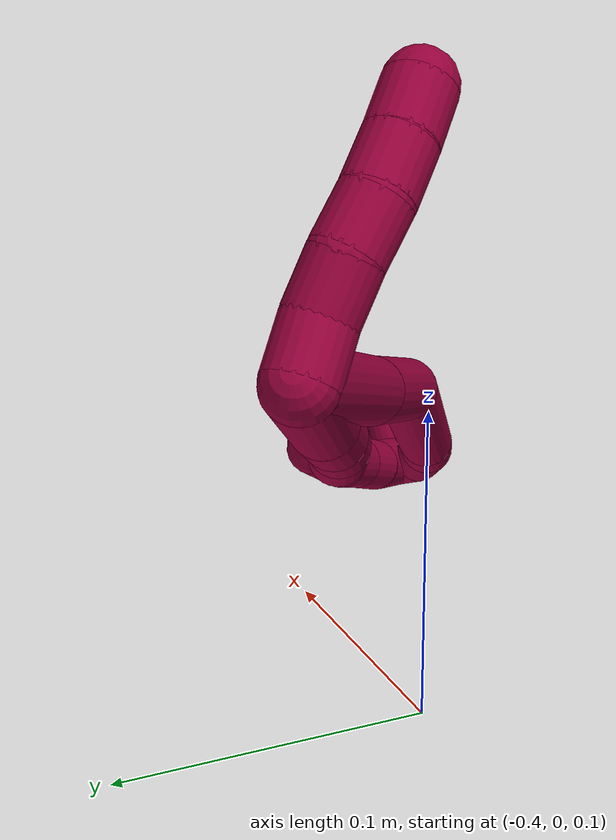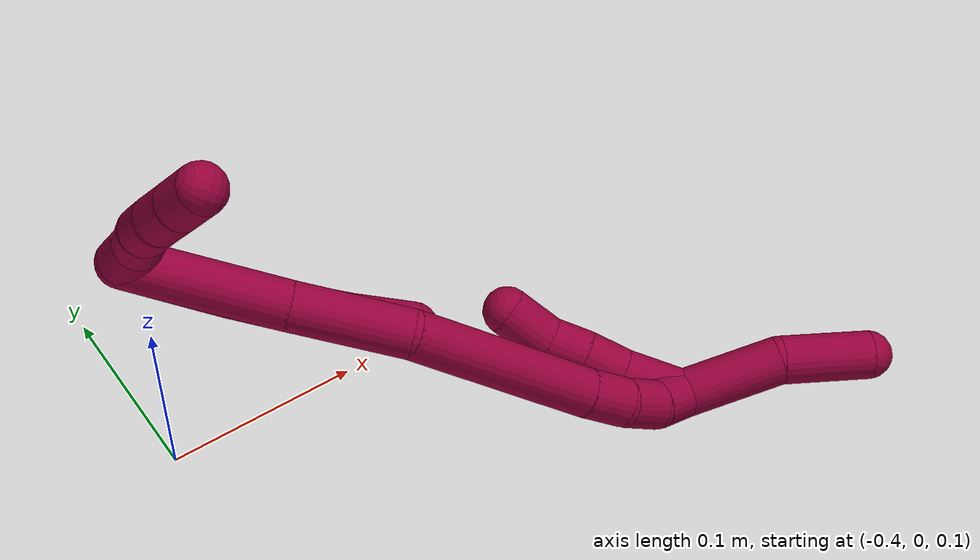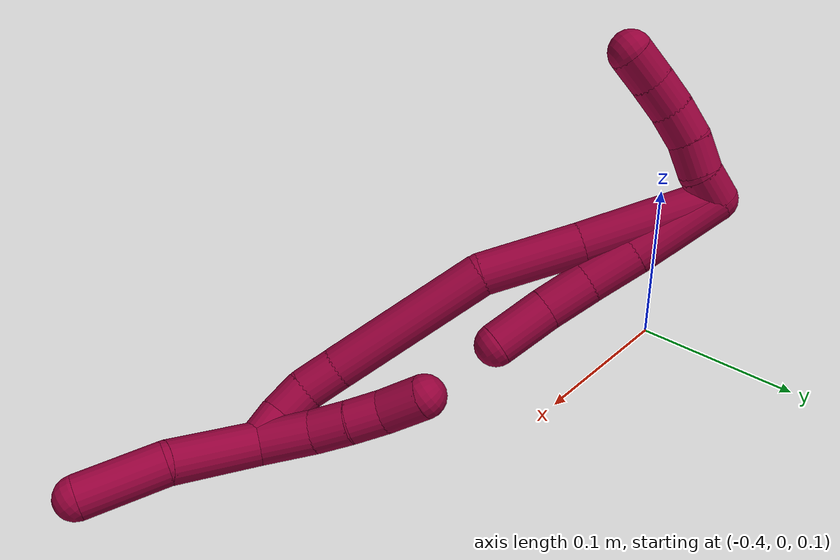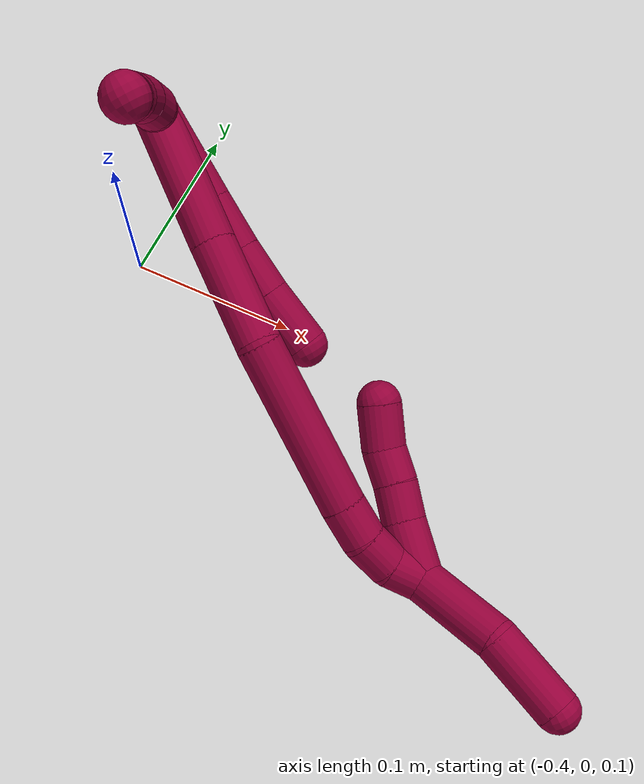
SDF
<sdf version="1.7">
 <world name="default">
  <model name="8">
   <static>0</static>
   <link name="8">
    <collision name="collision-cylinder-e_1_2_8">
     <pose>0.00208 -0.000753 -0.028076 3.11476 0.073939 2.44571</pose>
     <geometry><cylinder><radius>0.0125</radius><length>0.056325</length></cylinder></geometry>
     <surface>
      <friction><ode><mu>1.16</mu><mu2>1.16</mu2><slip1>0</slip1><slip2>0</slip2></ode></friction>
      <contact><ode><kp>1e+06</kp><kd>1</kd><max_vel>0</max_vel><min_depth>0.001</min_depth></ode></contact>
     </surface>
    </collision>
    <visual name="visual-cylinder-e_1_2_8">
     <pose>0.00208 -0.000753 -0.028076 3.11476 0.073939 2.44571</pose>
     <geometry><cylinder><radius>0.0125</radius><length>0.056325</length></cylinder></geometry>
     <material><ambient>0.584314 0 0.227451 1</ambient></material>
    </visual>
    <collision name="collision-cylinder-e_2_8_9">
     <pose>0.005952 -0.002272 -0.071491 3.09178 0.116101 2.33173</pose>
     <geometry><cylinder><radius>0.0125</radius><length>0.030926</length></cylinder></geometry>
     <surface>
      <friction><ode><mu>1.16</mu><mu2>1.16</mu2><slip1>0</slip1><slip2>0</slip2></ode></friction>
      <contact><ode><kp>1e+06</kp><kd>1</kd><max_vel>0</max_vel><min_depth>0.001</min_depth></ode></contact>
     </surface>
    </collision>
    <visual name="visual-cylinder-e_2_8_9">
     <pose>0.005952 -0.002272 -0.071491 3.09178 0.116101 2.33173</pose>
     <geometry><cylinder><radius>0.0125</radius><length>0.030926</length></cylinder></geometry>
     <material><ambient>0.584314 0 0.227451 1</ambient></material>
    </visual>
    <collision name="collision-cylinder-e_3_9_10">
     <pose>0.009851 -0.003233 -0.100826 3.12752 0.14947 2.95422</pose>
     <geometry><cylinder><radius>0.0125</radius><length>0.028309</length></cylinder></geometry>
     <surface>
      <friction><ode><mu>1.16</mu><mu2>1.16</mu2><slip1>0</slip1><slip2>0</slip2></ode></friction>
      <contact><ode><kp>1e+06</kp><kd>1</kd><max_vel>0</max_vel><min_depth>0.001</min_depth></ode></contact>
     </surface>
    </collision>
    <visual name="visual-cylinder-e_3_9_10">
     <pose>0.009851 -0.003233 -0.100826 3.12752 0.14947 2.95422</pose>
     <geometry><cylinder><radius>0.0125</radius><length>0.028309</length></cylinder></geometry>
     <material><ambient>0.584314 0 0.227451 1</ambient></material>
    </visual>
    <collision name="collision-cylinder-e_4_10_6">
     <pose>0.015012 -0.002495 -0.131743 -3.08637 0.17827 -2.54221</pose>
     <geometry><cylinder><radius>0.0125</radius><length>0.03444</length></cylinder></geometry>
     <surface>
      <friction><ode><mu>1.16</mu><mu2>1.16</mu2><slip1>0</slip1><slip2>0</slip2></ode></friction>
      <contact><ode><kp>1e+06</kp><kd>1</kd><max_vel>0</max_vel><min_depth>0.001</min_depth></ode></contact>
     </surface>
    </collision>
    <visual name="visual-cylinder-e_4_10_6">
     <pose>0.015012 -0.002495 -0.131743 -3.08637 0.17827 -2.54221</pose>
     <geometry><cylinder><radius>0.0125</radius><length>0.03444</length></cylinder></geometry>
     <material><ambient>0.584314 0 0.227451 1</ambient></material>
    </visual>
    <collision name="collision-cylinder-e_1_2_11">
     <pose>0.0076 -0.006494 0.000255 1.5315 0.863281 0.833794</pose>
     <geometry><cylinder><radius>0.0125</radius><length>0.02</length></cylinder></geometry>
     <surface>
      <friction><ode><mu>1.16</mu><mu2>1.16</mu2><slip1>0</slip1><slip2>0</slip2></ode></friction>
      <contact><ode><kp>1e+06</kp><kd>1</kd><max_vel>0</max_vel><min_depth>0.001</min_depth></ode></contact>
     </surface>
    </collision>
    <visual name="visual-cylinder-e_1_2_11">
     <pose>0.0076 -0.006494 0.000255 1.5315 0.863281 0.833794</pose>
     <geometry><cylinder><radius>0.0125</radius><length>0.02</length></cylinder></geometry>
     <material><ambient>0.584314 0 0.227451 1</ambient></material>
    </visual>
    <collision name="collision-cylinder-e_2_11_12">
     <pose>0.021381 -0.020433 0.003035 1.24383 0.666347 0.486317</pose>
     <geometry><cylinder><radius>0.0125</radius><length>0.02</length></cylinder></geometry>
     <surface>
      <friction><ode><mu>1.16</mu><mu2>1.16</mu2><slip1>0</slip1><slip2>0</slip2></ode></friction>
      <contact><ode><kp>1e+06</kp><kd>1</kd><max_vel>0</max_vel><min_depth>0.001</min_depth></ode></contact>
     </surface>
    </collision>
    <visual name="visual-cylinder-e_2_11_12">
     <pose>0.021381 -0.020433 0.003035 1.24383 0.666347 0.486317</pose>
     <geometry><cylinder><radius>0.0125</radius><length>0.02</length></cylinder></geometry>
     <material><ambient>0.584314 0 0.227451 1</ambient></material>
    </visual>
    <collision name="collision-cylinder-e_3_12_13">
     <pose>0.033787 -0.035676 0.006221 1.48623 0.671911 0.62094</pose>
     <geometry><cylinder><radius>0.0125</radius><length>0.02</length></cylinder></geometry>
     <surface>
      <friction><ode><mu>1.16</mu><mu2>1.16</mu2><slip1>0</slip1><slip2>0</slip2></ode></friction>
      <contact><ode><kp>1e+06</kp><kd>1</kd><max_vel>0</max_vel><min_depth>0.001</min_depth></ode></contact>
     </surface>
    </collision>
    <visual name="visual-cylinder-e_3_12_13">
     <pose>0.033787 -0.035676 0.006221 1.48623 0.671911 0.62094</pose>
     <geometry><cylinder><radius>0.0125</radius><length>0.02</length></cylinder></geometry>
     <material><ambient>0.584314 0 0.227451 1</ambient></material>
    </visual>
    <collision name="collision-cylinder-e_4_13_14">
     <pose>0.047054 -0.050561 0.00645 1.63167 0.781317 0.825141</pose>
     <geometry><cylinder><radius>0.0125</radius><length>0.02</length></cylinder></geometry>
     <surface>
      <friction><ode><mu>1.16</mu><mu2>1.16</mu2><slip1>0</slip1><slip2>0</slip2></ode></friction>
      <contact><ode><kp>1e+06</kp><kd>1</kd><max_vel>0</max_vel><min_depth>0.001</min_depth></ode></contact>
     </surface>
    </collision>
    <visual name="visual-cylinder-e_4_13_14">
     <pose>0.047054 -0.050561 0.00645 1.63167 0.781317 0.825141</pose>
     <geometry><cylinder><radius>0.0125</radius><length>0.02</length></cylinder></geometry>
     <material><ambient>0.584314 0 0.227451 1</ambient></material>
    </visual>
    <collision name="collision-cylinder-e_5_14_5">
     <pose>0.061483 -0.064345 0.005255 1.68432 0.831142 0.918383</pose>
     <geometry><cylinder><radius>0.0125</radius><length>0.02</length></cylinder></geometry>
     <surface>
      <friction><ode><mu>1.16</mu><mu2>1.16</mu2><slip1>0</slip1><slip2>0</slip2></ode></friction>
      <contact><ode><kp>1e+06</kp><kd>1</kd><max_vel>0</max_vel><min_depth>0.001</min_depth></ode></contact>
     </surface>
    </collision>
    <visual name="visual-cylinder-e_5_14_5">
     <pose>0.061483 -0.064345 0.005255 1.68432 0.831142 0.918383</pose>
     <geometry><cylinder><radius>0.0125</radius><length>0.02</length></cylinder></geometry>
     <material><ambient>0.584314 0 0.227451 1</ambient></material>
    </visual>
    <collision name="collision-cylinder-e_1_2_15">
     <pose>0.007168 -0.010771 -0.038207 2.86682 0.178637 1.14958</pose>
     <geometry><cylinder><radius>0.0125</radius><length>0.080675</length></cylinder></geometry>
     <surface>
      <friction><ode><mu>1.16</mu><mu2>1.16</mu2><slip1>0</slip1><slip2>0</slip2></ode></friction>
      <contact><ode><kp>1e+06</kp><kd>1</kd><max_vel>0</max_vel><min_depth>0.001</min_depth></ode></contact>
     </surface>
    </collision>
    <visual name="visual-cylinder-e_1_2_15">
     <pose>0.007168 -0.010771 -0.038207 2.86682 0.178637 1.14958</pose>
     <geometry><cylinder><radius>0.0125</radius><length>0.080675</length></cylinder></geometry>
     <material><ambient>0.584314 0 0.227451 1</ambient></material>
    </visual>
    <collision name="collision-cylinder-e_2_15_16">
     <pose>0.020562 -0.029678 -0.104358 2.85826 0.210781 1.27633</pose>
     <geometry><cylinder><radius>0.0125</radius><length>0.059528</length></cylinder></geometry>
     <surface>
      <friction><ode><mu>1.16</mu><mu2>1.16</mu2><slip1>0</slip1><slip2>0</slip2></ode></friction>
      <contact><ode><kp>1e+06</kp><kd>1</kd><max_vel>0</max_vel><min_depth>0.001</min_depth></ode></contact>
     </surface>
    </collision>
    <visual name="visual-cylinder-e_2_15_16">
     <pose>0.020562 -0.029678 -0.104358 2.85826 0.210781 1.27633</pose>
     <geometry><cylinder><radius>0.0125</radius><length>0.059528</length></cylinder></geometry>
     <material><ambient>0.584314 0 0.227451 1</ambient></material>
    </visual>
    <collision name="collision-cylinder-e_3_16_17">
     <pose>0.028161 -0.040427 -0.180793 3.08776 0.028239 0.966124</pose>
     <geometry><cylinder><radius>0.0125</radius><length>0.09716</length></cylinder></geometry>
     <surface>
      <friction><ode><mu>1.16</mu><mu2>1.16</mu2><slip1>0</slip1><slip2>0</slip2></ode></friction>
      <contact><ode><kp>1e+06</kp><kd>1</kd><max_vel>0</max_vel><min_depth>0.001</min_depth></ode></contact>
     </surface>
    </collision>
    <visual name="visual-cylinder-e_3_16_17">
     <pose>0.028161 -0.040427 -0.180793 3.08776 0.028239 0.966124</pose>
     <geometry><cylinder><radius>0.0125</radius><length>0.09716</length></cylinder></geometry>
     <material><ambient>0.584314 0 0.227451 1</ambient></material>
    </visual>
    <collision name="collision-cylinder-e_4_17_18">
     <pose>0.030511 -0.043261 -0.240223 3.12141 0.089184 2.69669</pose>
     <geometry><cylinder><radius>0.0125</radius><length>0.021971</length></cylinder></geometry>
     <surface>
      <friction><ode><mu>1.16</mu><mu2>1.16</mu2><slip1>0</slip1><slip2>0</slip2></ode></friction>
      <contact><ode><kp>1e+06</kp><kd>1</kd><max_vel>0</max_vel><min_depth>0.001</min_depth></ode></contact>
     </surface>
    </collision>
    <visual name="visual-cylinder-e_4_17_18">
     <pose>0.030511 -0.043261 -0.240223 3.12141 0.089184 2.69669</pose>
     <geometry><cylinder><radius>0.0125</radius><length>0.021971</length></cylinder></geometry>
     <material><ambient>0.584314 0 0.227451 1</ambient></material>
    </visual>
    <collision name="collision-cylinder-e_5_18_19">
     <pose>0.032845 -0.041121 -0.260952 -2.9049 0.133791 -1.02621</pose>
     <geometry><cylinder><radius>0.0125</radius><length>0.020321</length></cylinder></geometry>
     <surface>
      <friction><ode><mu>1.16</mu><mu2>1.16</mu2><slip1>0</slip1><slip2>0</slip2></ode></friction>
      <contact><ode><kp>1e+06</kp><kd>1</kd><max_vel>0</max_vel><min_depth>0.001</min_depth></ode></contact>
     </surface>
    </collision>
    <visual name="visual-cylinder-e_5_18_19">
     <pose>0.032845 -0.041121 -0.260952 -2.9049 0.133791 -1.02621</pose>
     <geometry><cylinder><radius>0.0125</radius><length>0.020321</length></cylinder></geometry>
     <material><ambient>0.584314 0 0.227451 1</ambient></material>
    </visual>
    <collision name="collision-cylinder-e_6_19_1">
     <pose>0.037717 -0.034149 -0.279099 -2.63758 0.352954 -1.21149</pose>
     <geometry><cylinder><radius>0.0125</radius><length>0.020345</length></cylinder></geometry>
     <surface>
      <friction><ode><mu>1.16</mu><mu2>1.16</mu2><slip1>0</slip1><slip2>0</slip2></ode></friction>
      <contact><ode><kp>1e+06</kp><kd>1</kd><max_vel>0</max_vel><min_depth>0.001</min_depth></ode></contact>
     </surface>
    </collision>
    <visual name="visual-cylinder-e_6_19_1">
     <pose>0.037717 -0.034149 -0.279099 -2.63758 0.352954 -1.21149</pose>
     <geometry><cylinder><radius>0.0125</radius><length>0.020345</length></cylinder></geometry>
     <material><ambient>0.584314 0 0.227451 1</ambient></material>
    </visual>
    <collision name="collision-cylinder-e_1_1_20">
     <pose>0.059473 -0.032618 -0.305939 2.97654 0.771979 2.73999</pose>
     <geometry><cylinder><radius>0.0125</radius><length>0.052297</length></cylinder></geometry>
     <surface>
      <friction><ode><mu>1.16</mu><mu2>1.16</mu2><slip1>0</slip1><slip2>0</slip2></ode></friction>
      <contact><ode><kp>1e+06</kp><kd>1</kd><max_vel>0</max_vel><min_depth>0.001</min_depth></ode></contact>
     </surface>
    </collision>
    <visual name="visual-cylinder-e_1_1_20">
     <pose>0.059473 -0.032618 -0.305939 2.97654 0.771979 2.73999</pose>
     <geometry><cylinder><radius>0.0125</radius><length>0.052297</length></cylinder></geometry>
     <material><ambient>0.584314 0 0.227451 1</ambient></material>
    </visual>
    <collision name="collision-cylinder-e_2_20_4">
     <pose>0.088092 -0.038126 -0.345757 3.02824 0.45021 2.65584</pose>
     <geometry><cylinder><radius>0.0125</radius><length>0.047703</length></cylinder></geometry>
     <surface>
      <friction><ode><mu>1.16</mu><mu2>1.16</mu2><slip1>0</slip1><slip2>0</slip2></ode></friction>
      <contact><ode><kp>1e+06</kp><kd>1</kd><max_vel>0</max_vel><min_depth>0.001</min_depth></ode></contact>
     </surface>
    </collision>
    <visual name="visual-cylinder-e_2_20_4">
     <pose>0.088092 -0.038126 -0.345757 3.02824 0.45021 2.65584</pose>
     <geometry><cylinder><radius>0.0125</radius><length>0.047703</length></cylinder></geometry>
     <material><ambient>0.584314 0 0.227451 1</ambient></material>
    </visual>
    <collision name="collision-cylinder-e_1_1_21">
     <pose>0.039036 -0.023184 -0.272573 -0.403563 -0.134925 0.027641</pose>
     <geometry><cylinder><radius>0.0125</radius><length>0.032664</length></cylinder></geometry>
     <surface>
      <friction><ode><mu>1.16</mu><mu2>1.16</mu2><slip1>0</slip1><slip2>0</slip2></ode></friction>
      <contact><ode><kp>1e+06</kp><kd>1</kd><max_vel>0</max_vel><min_depth>0.001</min_depth></ode></contact>
     </surface>
    </collision>
    <visual name="visual-cylinder-e_1_1_21">
     <pose>0.039036 -0.023184 -0.272573 -0.403563 -0.134925 0.027641</pose>
     <geometry><cylinder><radius>0.0125</radius><length>0.032664</length></cylinder></geometry>
     <material><ambient>0.584314 0 0.227451 1</ambient></material>
    </visual>
    <collision name="collision-cylinder-e_2_21_22">
     <pose>0.036769 -0.012789 -0.247774 -0.386943 -0.006535 0.00128</pose>
     <geometry><cylinder><radius>0.0125</radius><length>0.021415</length></cylinder></geometry>
     <surface>
      <friction><ode><mu>1.16</mu><mu2>1.16</mu2><slip1>0</slip1><slip2>0</slip2></ode></friction>
      <contact><ode><kp>1e+06</kp><kd>1</kd><max_vel>0</max_vel><min_depth>0.001</min_depth></ode></contact>
     </surface>
    </collision>
    <visual name="visual-cylinder-e_2_21_22">
     <pose>0.036769 -0.012789 -0.247774 -0.386943 -0.006535 0.00128</pose>
     <geometry><cylinder><radius>0.0125</radius><length>0.021415</length></cylinder></geometry>
     <material><ambient>0.584314 0 0.227451 1</ambient></material>
    </visual>
    <collision name="collision-cylinder-e_3_22_23">
     <pose>0.035834 -0.005541 -0.228312 -0.324125 -0.085735 0.014026</pose>
     <geometry><cylinder><radius>0.0125</radius><length>0.020217</length></cylinder></geometry>
     <surface>
      <friction><ode><mu>1.16</mu><mu2>1.16</mu2><slip1>0</slip1><slip2>0</slip2></ode></friction>
      <contact><ode><kp>1e+06</kp><kd>1</kd><max_vel>0</max_vel><min_depth>0.001</min_depth></ode></contact>
     </surface>
    </collision>
    <visual name="visual-cylinder-e_3_22_23">
     <pose>0.035834 -0.005541 -0.228312 -0.324125 -0.085735 0.014026</pose>
     <geometry><cylinder><radius>0.0125</radius><length>0.020217</length></cylinder></geometry>
     <material><ambient>0.584314 0 0.227451 1</ambient></material>
    </visual>
    <collision name="collision-cylinder-e_4_23_3">
     <pose>0.037409 0.002032 -0.206926 -0.353214 0.19107 -0.0342</pose>
     <geometry><cylinder><radius>0.0125</radius><length>0.025704</length></cylinder></geometry>
     <surface>
      <friction><ode><mu>1.16</mu><mu2>1.16</mu2><slip1>0</slip1><slip2>0</slip2></ode></friction>
      <contact><ode><kp>1e+06</kp><kd>1</kd><max_vel>0</max_vel><min_depth>0.001</min_depth></ode></contact>
     </surface>
    </collision>
    <visual name="visual-cylinder-e_4_23_3">
     <pose>0.037409 0.002032 -0.206926 -0.353214 0.19107 -0.0342</pose>
     <geometry><cylinder><radius>0.0125</radius><length>0.025704</length></cylinder></geometry>
     <material><ambient>0.584314 0 0.227451 1</ambient></material>
    </visual>
    <collision name="collision-sphere-3">
     <pose>0.03985 0.006397 -0.195087 0 -0 0</pose>
     <geometry><sphere><radius>0.0125</radius></sphere></geometry>
     <surface>
      <friction><ode><mu>1.16</mu><mu2>1.16</mu2><slip1>0</slip1><slip2>0</slip2></ode></friction>
      <contact><ode><kp>1e+06</kp><kd>1</kd><max_vel>0</max_vel><min_depth>0.001</min_depth></ode></contact>
     </surface>
    </collision>
    <visual name="visual-sphere-3">
     <pose>0.03985 0.006397 -0.195087 0 -0 0</pose>
     <geometry><sphere><radius>0.0125</radius></sphere></geometry>
     <material><ambient>0.584314 0 0.227451 1</ambient></material>
    </visual>
    <collision name="collision-sphere-23">
     <pose>0.034968 -0.002333 -0.218765 0 -0 0</pose>
     <geometry><sphere><radius>0.0125</radius></sphere></geometry>
     <surface>
      <friction><ode><mu>1.16</mu><mu2>1.16</mu2><slip1>0</slip1><slip2>0</slip2></ode></friction>
      <contact><ode><kp>1e+06</kp><kd>1</kd><max_vel>0</max_vel><min_depth>0.001</min_depth></ode></contact>
     </surface>
    </collision>
    <visual name="visual-sphere-23">
     <pose>0.034968 -0.002333 -0.218765 0 -0 0</pose>
     <geometry><sphere><radius>0.0125</radius></sphere></geometry>
     <material><ambient>0.584314 0 0.227451 1</ambient></material>
    </visual>
    <collision name="collision-sphere-22">
     <pose>0.036699 -0.008748 -0.237859 0 -0 0</pose>
     <geometry><sphere><radius>0.0125</radius></sphere></geometry>
     <surface>
      <friction><ode><mu>1.16</mu><mu2>1.16</mu2><slip1>0</slip1><slip2>0</slip2></ode></friction>
      <contact><ode><kp>1e+06</kp><kd>1</kd><max_vel>0</max_vel><min_depth>0.001</min_depth></ode></contact>
     </surface>
    </collision>
    <visual name="visual-sphere-22">
     <pose>0.036699 -0.008748 -0.237859 0 -0 0</pose>
     <geometry><sphere><radius>0.0125</radius></sphere></geometry>
     <material><ambient>0.584314 0 0.227451 1</ambient></material>
    </visual>
    <collision name="collision-sphere-21">
     <pose>0.036839 -0.016829 -0.25769 0 -0 0</pose>
     <geometry><sphere><radius>0.0125</radius></sphere></geometry>
     <surface>
      <friction><ode><mu>1.16</mu><mu2>1.16</mu2><slip1>0</slip1><slip2>0</slip2></ode></friction>
      <contact><ode><kp>1e+06</kp><kd>1</kd><max_vel>0</max_vel><min_depth>0.001</min_depth></ode></contact>
     </surface>
    </collision>
    <visual name="visual-sphere-21">
     <pose>0.036839 -0.016829 -0.25769 0 -0 0</pose>
     <geometry><sphere><radius>0.0125</radius></sphere></geometry>
     <material><ambient>0.584314 0 0.227451 1</ambient></material>
    </visual>
    <collision name="collision-sphere-4">
     <pose>0.098471 -0.040554 -0.367094 0 -0 0</pose>
     <geometry><sphere><radius>0.0125</radius></sphere></geometry>
     <surface>
      <friction><ode><mu>1.16</mu><mu2>1.16</mu2><slip1>0</slip1><slip2>0</slip2></ode></friction>
      <contact><ode><kp>1e+06</kp><kd>1</kd><max_vel>0</max_vel><min_depth>0.001</min_depth></ode></contact>
     </surface>
    </collision>
    <visual name="visual-sphere-4">
     <pose>0.098471 -0.040554 -0.367094 0 -0 0</pose>
     <geometry><sphere><radius>0.0125</radius></sphere></geometry>
     <material><ambient>0.584314 0 0.227451 1</ambient></material>
    </visual>
    <collision name="collision-sphere-20">
     <pose>0.077713 -0.035697 -0.32442 0 -0 0</pose>
     <geometry><sphere><radius>0.0125</radius></sphere></geometry>
     <surface>
      <friction><ode><mu>1.16</mu><mu2>1.16</mu2><slip1>0</slip1><slip2>0</slip2></ode></friction>
      <contact><ode><kp>1e+06</kp><kd>1</kd><max_vel>0</max_vel><min_depth>0.001</min_depth></ode></contact>
     </surface>
    </collision>
    <visual name="visual-sphere-20">
     <pose>0.077713 -0.035697 -0.32442 0 -0 0</pose>
     <geometry><sphere><radius>0.0125</radius></sphere></geometry>
     <material><ambient>0.584314 0 0.227451 1</ambient></material>
    </visual>
    <collision name="collision-sphere-11">
     <pose>0.0152 -0.012989 0.000511 0 -0 0</pose>
     <geometry><sphere><radius>0.0125</radius></sphere></geometry>
     <surface>
      <friction><ode><mu>1.16</mu><mu2>1.16</mu2><slip1>0</slip1><slip2>0</slip2></ode></friction>
      <contact><ode><kp>1e+06</kp><kd>1</kd><max_vel>0</max_vel><min_depth>0.001</min_depth></ode></contact>
     </surface>
    </collision>
    <visual name="visual-sphere-11">
     <pose>0.0152 -0.012989 0.000511 0 -0 0</pose>
     <geometry><sphere><radius>0.0125</radius></sphere></geometry>
     <material><ambient>0.584314 0 0.227451 1</ambient></material>
    </visual>
    <collision name="collision-sphere-6">
     <pose>0.018066 -0.001559 -0.148664 0 -0 0</pose>
     <geometry><sphere><radius>0.0125</radius></sphere></geometry>
     <surface>
      <friction><ode><mu>1.16</mu><mu2>1.16</mu2><slip1>0</slip1><slip2>0</slip2></ode></friction>
      <contact><ode><kp>1e+06</kp><kd>1</kd><max_vel>0</max_vel><min_depth>0.001</min_depth></ode></contact>
     </surface>
    </collision>
    <visual name="visual-sphere-6">
     <pose>0.018066 -0.001559 -0.148664 0 -0 0</pose>
     <geometry><sphere><radius>0.0125</radius></sphere></geometry>
     <material><ambient>0.584314 0 0.227451 1</ambient></material>
    </visual>
    <collision name="collision-sphere-10">
     <pose>0.011959 -0.00343 -0.114821 0 -0 0</pose>
     <geometry><sphere><radius>0.0125</radius></sphere></geometry>
     <surface>
      <friction><ode><mu>1.16</mu><mu2>1.16</mu2><slip1>0</slip1><slip2>0</slip2></ode></friction>
      <contact><ode><kp>1e+06</kp><kd>1</kd><max_vel>0</max_vel><min_depth>0.001</min_depth></ode></contact>
     </surface>
    </collision>
    <visual name="visual-sphere-10">
     <pose>0.011959 -0.00343 -0.114821 0 -0 0</pose>
     <geometry><sphere><radius>0.0125</radius></sphere></geometry>
     <material><ambient>0.584314 0 0.227451 1</ambient></material>
    </visual>
    <collision name="collision-sphere-9">
     <pose>0.007743 -0.003036 -0.086831 0 -0 0</pose>
     <geometry><sphere><radius>0.0125</radius></sphere></geometry>
     <surface>
      <friction><ode><mu>1.16</mu><mu2>1.16</mu2><slip1>0</slip1><slip2>0</slip2></ode></friction>
      <contact><ode><kp>1e+06</kp><kd>1</kd><max_vel>0</max_vel><min_depth>0.001</min_depth></ode></contact>
     </surface>
    </collision>
    <visual name="visual-sphere-9">
     <pose>0.007743 -0.003036 -0.086831 0 -0 0</pose>
     <geometry><sphere><radius>0.0125</radius></sphere></geometry>
     <material><ambient>0.584314 0 0.227451 1</ambient></material>
    </visual>
    <collision name="collision-sphere-2">
     <geometry><sphere><radius>0.0125</radius></sphere></geometry>
     <surface>
      <friction><ode><mu>1.16</mu><mu2>1.16</mu2><slip1>0</slip1><slip2>0</slip2></ode></friction>
      <contact><ode><kp>1e+06</kp><kd>1</kd><max_vel>0</max_vel><min_depth>0.001</min_depth></ode></contact>
     </surface>
    </collision>
    <visual name="visual-sphere-2">
     <geometry><sphere><radius>0.0125</radius></sphere></geometry>
     <material><ambient>0.584314 0 0.227451 1</ambient></material>
    </visual>
    <collision name="collision-sphere-19">
     <pose>0.034201 -0.038759 -0.27074 0 -0 0</pose>
     <geometry><sphere><radius>0.0125</radius></sphere></geometry>
     <surface>
      <friction><ode><mu>1.16</mu><mu2>1.16</mu2><slip1>0</slip1><slip2>0</slip2></ode></friction>
      <contact><ode><kp>1e+06</kp><kd>1</kd><max_vel>0</max_vel><min_depth>0.001</min_depth></ode></contact>
     </surface>
    </collision>
    <visual name="visual-sphere-19">
     <pose>0.034201 -0.038759 -0.27074 0 -0 0</pose>
     <geometry><sphere><radius>0.0125</radius></sphere></geometry>
     <material><ambient>0.584314 0 0.227451 1</ambient></material>
    </visual>
    <collision name="collision-sphere-8">
     <pose>0.004161 -0.001507 -0.056151 0 -0 0</pose>
     <geometry><sphere><radius>0.0125</radius></sphere></geometry>
     <surface>
      <friction><ode><mu>1.16</mu><mu2>1.16</mu2><slip1>0</slip1><slip2>0</slip2></ode></friction>
      <contact><ode><kp>1e+06</kp><kd>1</kd><max_vel>0</max_vel><min_depth>0.001</min_depth></ode></contact>
     </surface>
    </collision>
    <visual name="visual-sphere-8">
     <pose>0.004161 -0.001507 -0.056151 0 -0 0</pose>
     <geometry><sphere><radius>0.0125</radius></sphere></geometry>
     <material><ambient>0.584314 0 0.227451 1</ambient></material>
    </visual>
    <collision name="collision-sphere-12">
     <pose>0.027562 -0.027878 0.00556 0 -0 0</pose>
     <geometry><sphere><radius>0.0125</radius></sphere></geometry>
     <surface>
      <friction><ode><mu>1.16</mu><mu2>1.16</mu2><slip1>0</slip1><slip2>0</slip2></ode></friction>
      <contact><ode><kp>1e+06</kp><kd>1</kd><max_vel>0</max_vel><min_depth>0.001</min_depth></ode></contact>
     </surface>
    </collision>
    <visual name="visual-sphere-12">
     <pose>0.027562 -0.027878 0.00556 0 -0 0</pose>
     <geometry><sphere><radius>0.0125</radius></sphere></geometry>
     <material><ambient>0.584314 0 0.227451 1</ambient></material>
    </visual>
    <collision name="collision-sphere-13">
     <pose>0.040012 -0.043474 0.006882 0 -0 0</pose>
     <geometry><sphere><radius>0.0125</radius></sphere></geometry>
     <surface>
      <friction><ode><mu>1.16</mu><mu2>1.16</mu2><slip1>0</slip1><slip2>0</slip2></ode></friction>
      <contact><ode><kp>1e+06</kp><kd>1</kd><max_vel>0</max_vel><min_depth>0.001</min_depth></ode></contact>
     </surface>
    </collision>
    <visual name="visual-sphere-13">
     <pose>0.040012 -0.043474 0.006882 0 -0 0</pose>
     <geometry><sphere><radius>0.0125</radius></sphere></geometry>
     <material><ambient>0.584314 0 0.227451 1</ambient></material>
    </visual>
    <collision name="collision-sphere-14">
     <pose>0.054096 -0.057648 0.006018 0 -0 0</pose>
     <geometry><sphere><radius>0.0125</radius></sphere></geometry>
     <surface>
      <friction><ode><mu>1.16</mu><mu2>1.16</mu2><slip1>0</slip1><slip2>0</slip2></ode></friction>
      <contact><ode><kp>1e+06</kp><kd>1</kd><max_vel>0</max_vel><min_depth>0.001</min_depth></ode></contact>
     </surface>
    </collision>
    <visual name="visual-sphere-14">
     <pose>0.054096 -0.057648 0.006018 0 -0 0</pose>
     <geometry><sphere><radius>0.0125</radius></sphere></geometry>
     <material><ambient>0.584314 0 0.227451 1</ambient></material>
    </visual>
    <collision name="collision-sphere-5">
     <pose>0.06887 -0.071042 0.004491 0 -0 0</pose>
     <geometry><sphere><radius>0.0125</radius></sphere></geometry>
     <surface>
      <friction><ode><mu>1.16</mu><mu2>1.16</mu2><slip1>0</slip1><slip2>0</slip2></ode></friction>
      <contact><ode><kp>1e+06</kp><kd>1</kd><max_vel>0</max_vel><min_depth>0.001</min_depth></ode></contact>
     </surface>
    </collision>
    <visual name="visual-sphere-5">
     <pose>0.06887 -0.071042 0.004491 0 -0 0</pose>
     <geometry><sphere><radius>0.0125</radius></sphere></geometry>
     <material><ambient>0.584314 0 0.227451 1</ambient></material>
    </visual>
    <collision name="collision-sphere-15">
     <pose>0.014335 -0.021541 -0.076413 0 -0 0</pose>
     <geometry><sphere><radius>0.0125</radius></sphere></geometry>
     <surface>
      <friction><ode><mu>1.16</mu><mu2>1.16</mu2><slip1>0</slip1><slip2>0</slip2></ode></friction>
      <contact><ode><kp>1e+06</kp><kd>1</kd><max_vel>0</max_vel><min_depth>0.001</min_depth></ode></contact>
     </surface>
    </collision>
    <visual name="visual-sphere-15">
     <pose>0.014335 -0.021541 -0.076413 0 -0 0</pose>
     <geometry><sphere><radius>0.0125</radius></sphere></geometry>
     <material><ambient>0.584314 0 0.227451 1</ambient></material>
    </visual>
    <collision name="collision-sphere-16">
     <pose>0.02679 -0.037815 -0.132303 0 -0 0</pose>
     <geometry><sphere><radius>0.0125</radius></sphere></geometry>
     <surface>
      <friction><ode><mu>1.16</mu><mu2>1.16</mu2><slip1>0</slip1><slip2>0</slip2></ode></friction>
      <contact><ode><kp>1e+06</kp><kd>1</kd><max_vel>0</max_vel><min_depth>0.001</min_depth></ode></contact>
     </surface>
    </collision>
    <visual name="visual-sphere-16">
     <pose>0.02679 -0.037815 -0.132303 0 -0 0</pose>
     <geometry><sphere><radius>0.0125</radius></sphere></geometry>
     <material><ambient>0.584314 0 0.227451 1</ambient></material>
    </visual>
    <collision name="collision-sphere-17">
     <pose>0.029533 -0.04304 -0.229284 0 -0 0</pose>
     <geometry><sphere><radius>0.0125</radius></sphere></geometry>
     <surface>
      <friction><ode><mu>1.16</mu><mu2>1.16</mu2><slip1>0</slip1><slip2>0</slip2></ode></friction>
      <contact><ode><kp>1e+06</kp><kd>1</kd><max_vel>0</max_vel><min_depth>0.001</min_depth></ode></contact>
     </surface>
    </collision>
    <visual name="visual-sphere-17">
     <pose>0.029533 -0.04304 -0.229284 0 -0 0</pose>
     <geometry><sphere><radius>0.0125</radius></sphere></geometry>
     <material><ambient>0.584314 0 0.227451 1</ambient></material>
    </visual>
    <collision name="collision-sphere-18">
     <pose>0.03149 -0.043482 -0.251163 0 -0 0</pose>
     <geometry><sphere><radius>0.0125</radius></sphere></geometry>
     <surface>
      <friction><ode><mu>1.16</mu><mu2>1.16</mu2><slip1>0</slip1><slip2>0</slip2></ode></friction>
      <contact><ode><kp>1e+06</kp><kd>1</kd><max_vel>0</max_vel><min_depth>0.001</min_depth></ode></contact>
     </surface>
    </collision>
    <visual name="visual-sphere-18">
     <pose>0.03149 -0.043482 -0.251163 0 -0 0</pose>
     <geometry><sphere><radius>0.0125</radius></sphere></geometry>
     <material><ambient>0.584314 0 0.227451 1</ambient></material>
    </visual>
    <collision name="collision-sphere-1">
     <pose>0.041233 -0.02954 -0.287457 0 -0 0</pose>
     <geometry><sphere><radius>0.0125</radius></sphere></geometry>
     <surface>
      <friction><ode><mu>1.16</mu><mu2>1.16</mu2><slip1>0</slip1><slip2>0</slip2></ode></friction>
      <contact><ode><kp>1e+06</kp><kd>1</kd><max_vel>0</max_vel><min_depth>0.001</min_depth></ode></contact>
     </surface>
    </collision>
    <visual name="visual-sphere-1">
     <pose>0.041233 -0.02954 -0.287457 0 -0 0</pose>
     <geometry><sphere><radius>0.0125</radius></sphere></geometry>
     <material><ambient>0.584314 0 0.227451 1</ambient></material>
    </visual>
    <inertial>
     <pose>0.029637 -0.023334 -0.147355 0 -0 0</pose>
     <mass>0.75</mass>
     <inertia>
      <ixx>0.000206</ixx>
      <ixy>0</ixy>
      <ixz>0</ixz>
      <iyy>0.000135</iyy>
      <iyz>0</iyz>
      <izz>-4.5e-05</izz>
     </inertia>
    </inertial>
   </link>
   <pose>-0.393733 0.038392 0.210594 -0.645171 -0.837699 0.250129</pose>
  </model>
 </world>
</sdf>
